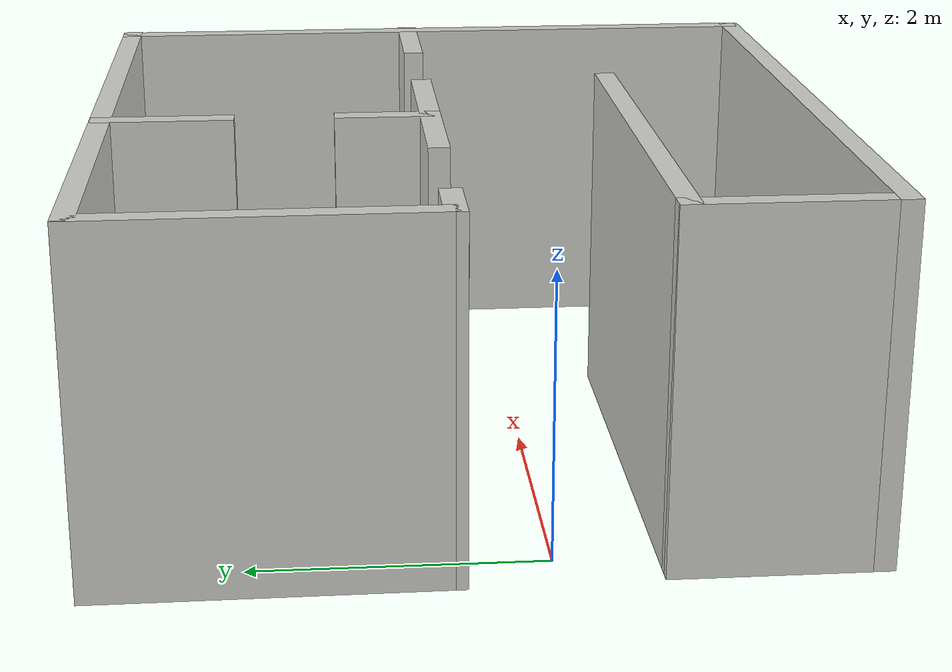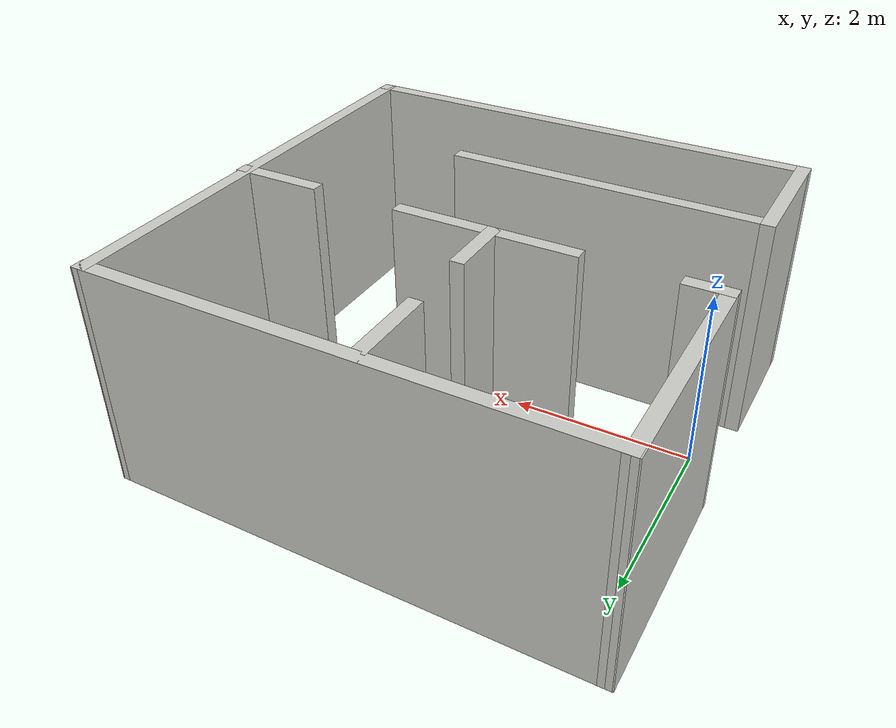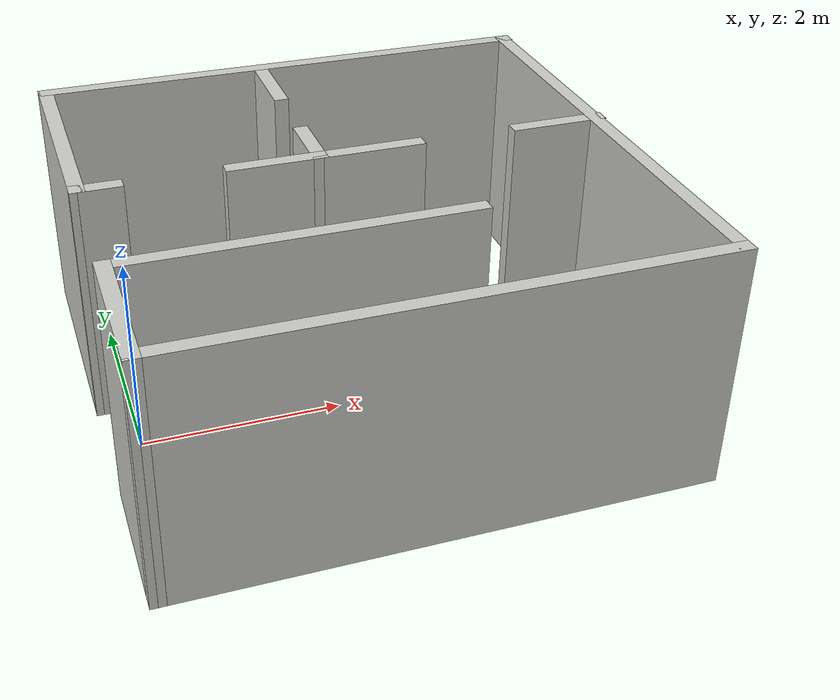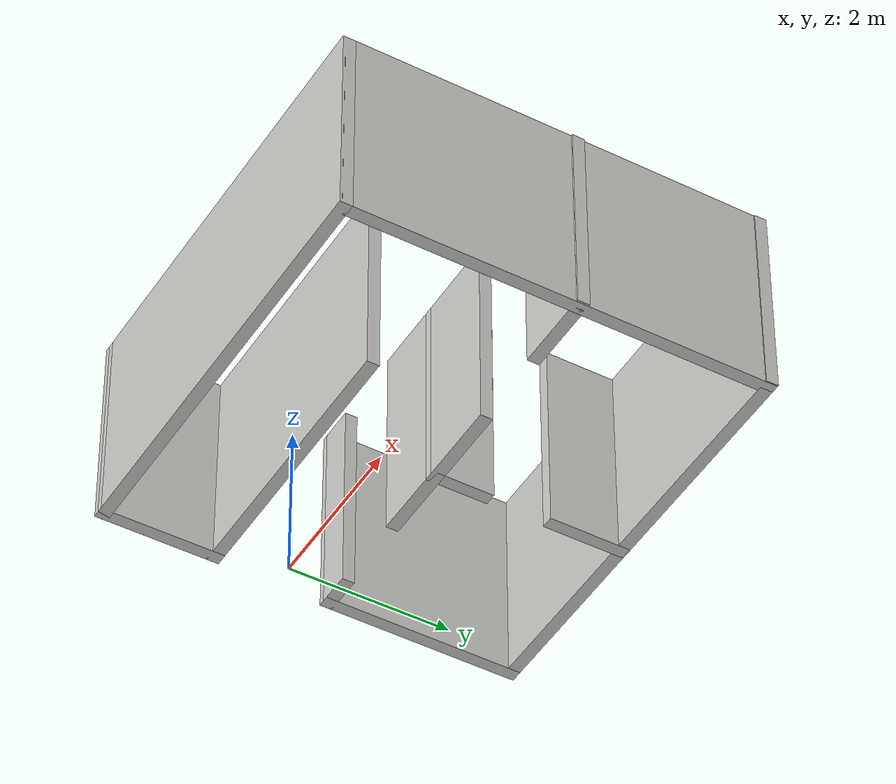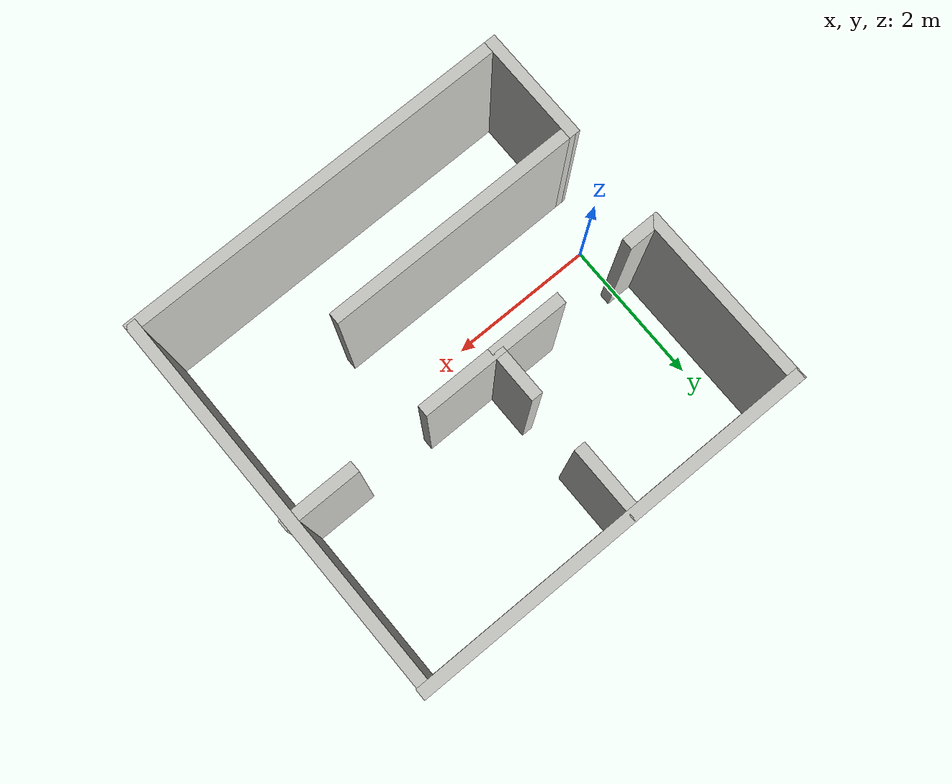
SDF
<?xml version='1.0'?>
<sdf version='1.7'>
  <model name='WH_new_final'>
    <pose>2.33032 0.4238 0 0 -0 0</pose>
    <link name='Wall_12'>
      <collision name='Wall_12_Collision'>
        <geometry>
          <box>
            <size>5.35582 0.15 2.5</size>
          </box>
        </geometry>
        <pose>0 0 1.25 0 -0 0</pose>
      </collision>
      <visual name='Wall_12_Visual'>
        <pose>0 0 1.25 0 -0 0</pose>
        <geometry>
          <box>
            <size>5.35582 0.15 2.5</size>
          </box>
        </geometry>
        <material>
          <script>
            <uri>file://media/materials/scripts/gazebo.material</uri>
            <name>Gazebo/CeilingTiled</name>
          </script>
          <ambient>0.921569 0.807843 0.615686 1</ambient>
        </material>
        <meta>
          <layer>0</layer>
        </meta>
      </visual>
      <pose>-0.000838 2.53222 0 0 -0 3.13905</pose>
    </link>
    <link name='Wall_13'>
      <collision name='Wall_13_Collision'>
        <geometry>
          <box>
            <size>2.46059 0.15 2.5</size>
          </box>
        </geometry>
        <pose>0 0 1.25 0 -0 0</pose>
      </collision>
      <visual name='Wall_13_Visual'>
        <pose>0 0 1.25 0 -0 0</pose>
        <geometry>
          <box>
            <size>2.46059 0.15 2.5</size>
          </box>
        </geometry>
        <material>
          <script>
            <uri>file://media/materials/scripts/gazebo.material</uri>
            <name>Gazebo/CeilingTiled</name>
          </script>
          <ambient>0.921569 0.807843 0.615686 1</ambient>
        </material>
        <meta>
          <layer>0</layer>
        </meta>
      </visual>
      <pose>-2.61031 1.38356 0 0 -0 -1.5651</pose>
    </link>
    <link name='Wall_14'>
      <collision name='Wall_14_Collision'>
        <geometry>
          <box>
            <size>0.5 0.15 2.5</size>
          </box>
        </geometry>
        <pose>0 0 1.25 0 -0 0</pose>
      </collision>
      <visual name='Wall_14_Visual'>
        <pose>0 0 1.25 0 -0 0</pose>
        <geometry>
          <box>
            <size>0.5 0.15 2.5</size>
          </box>
        </geometry>
        <material>
          <script>
            <uri>file://media/materials/scripts/gazebo.material</uri>
            <name>Gazebo/CeilingTiled</name>
          </script>
          <ambient>0.921569 0.807843 0.615686 1</ambient>
        </material>
        <meta>
          <layer>0</layer>
        </meta>
      </visual>
      <pose>-2.42874 0.228285 0 0 -0 0</pose>
    </link>
    <link name='Wall_16'>
      <collision name='Wall_16_Collision'>
        <geometry>
          <box>
            <size>1 0.15 2.5</size>
          </box>
        </geometry>
        <pose>0 0 1.25 0 -0 0</pose>
      </collision>
      <visual name='Wall_16_Visual'>
        <pose>0 0 1.25 0 -0 0</pose>
        <geometry>
          <box>
            <size>1 0.15 2.5</size>
          </box>
        </geometry>
        <material>
          <script>
            <uri>file://media/materials/scripts/gazebo.material</uri>
            <name>Gazebo/CeilingTiled</name>
          </script>
          <ambient>0.921569 0.807843 0.615686 1</ambient>
        </material>
        <meta>
          <layer>0</layer>
        </meta>
      </visual>
      <pose>-0.728738 0.228285 0 0 -0 0</pose>
    </link>
    <link name='Wall_17'>
      <collision name='Wall_17_Collision'>
        <geometry>
          <box>
            <size>0.750062 0.15 2.5</size>
          </box>
        </geometry>
        <pose>0 0 1.25 0 -0 0</pose>
      </collision>
      <visual name='Wall_17_Visual'>
        <pose>0 0 1.25 0 -0 0</pose>
        <geometry>
          <box>
            <size>0.750062 0.15 2.5</size>
          </box>
        </geometry>
        <material>
          <script>
            <uri>file://media/materials/scripts/gazebo.material</uri>
            <name>Gazebo/CeilingTiled</name>
          </script>
          <ambient>0.921569 0.807843 0.615686 1</ambient>
        </material>
        <meta>
          <layer>0</layer>
        </meta>
      </visual>
      <pose>-0.303738 0.528285 0 0 -0 1.5708</pose>
    </link>
    <link name='Wall_19'>
      <collision name='Wall_19_Collision'>
        <geometry>
          <box>
            <size>1.13716 0.15 2.5</size>
          </box>
        </geometry>
        <pose>0 0 1.25 0 -0 0</pose>
      </collision>
      <visual name='Wall_19_Visual'>
        <pose>0 0 1.25 0 -0 0</pose>
        <geometry>
          <box>
            <size>1.13716 0.15 2.5</size>
          </box>
        </geometry>
        <material>
          <script>
            <uri>file://media/materials/scripts/gazebo.material</uri>
            <name>Gazebo/CeilingTiled</name>
          </script>
          <ambient>0.921569 0.807843 0.615686 1</ambient>
        </material>
        <meta>
          <layer>0</layer>
        </meta>
      </visual>
      <pose>0.189841 0.227732 0 0 -0 -0.001119</pose>
    </link>
    <link name='Wall_21'>
      <collision name='Wall_21_Collision'>
        <geometry>
          <box>
            <size>1 0.15 2.5</size>
          </box>
        </geometry>
        <pose>0 0 1.25 0 -0 0</pose>
      </collision>
      <visual name='Wall_21_Visual'>
        <pose>0 0 1.25 0 -0 0</pose>
        <geometry>
          <box>
            <size>1 0.15 2.5</size>
          </box>
        </geometry>
        <material>
          <script>
            <uri>file://media/materials/scripts/gazebo.material</uri>
            <name>Gazebo/CeilingTiled</name>
          </script>
          <ambient>0.921569 0.807843 0.615686 1</ambient>
        </material>
        <meta>
          <layer>0</layer>
        </meta>
      </visual>
      <pose>2.19231 0.228285 0 0 -0 0</pose>
    </link>
    <link name='Wall_24'>
      <collision name='Wall_24_Collision'>
        <geometry>
          <box>
            <size>1 0.15 2.5</size>
          </box>
        </geometry>
        <pose>0 0 1.25 0 -0 0</pose>
      </collision>
      <visual name='Wall_24_Visual'>
        <pose>0 0 1.25 0 -0 0</pose>
        <geometry>
          <box>
            <size>1 0.15 2.5</size>
          </box>
        </geometry>
        <material>
          <script>
            <uri>file://media/materials/scripts/gazebo.material</uri>
            <name>Gazebo/CeilingTiled</name>
          </script>
          <ambient>0.921569 0.807843 0.615686 1</ambient>
        </material>
        <meta>
          <layer>0</layer>
        </meta>
      </visual>
      <pose>-0.303738 2.10329 0 0 -0 1.5708</pose>
    </link>
    <link name='Wall_5'>
      <collision name='Wall_5_Collision'>
        <geometry>
          <box>
            <size>1.5 0.15 2.5</size>
          </box>
        </geometry>
        <pose>0 0 1.25 0 -0 0</pose>
      </collision>
      <visual name='Wall_5_Visual'>
        <pose>0 0 1.25 0 -0 0</pose>
        <geometry>
          <box>
            <size>1.5 0.15 2.5</size>
          </box>
        </geometry>
        <material>
          <script>
            <uri>file://media/materials/scripts/gazebo.material</uri>
            <name>Gazebo/CeilingTiled</name>
          </script>
          <ambient>0.921569 0.807843 0.615686 1</ambient>
        </material>
        <meta>
          <layer>0</layer>
        </meta>
      </visual>
      <pose>-2.57201 -1.8642 0 0 -0 1.5708</pose>
    </link>
    <link name='Wall_6'>
      <collision name='Wall_6_Collision'>
        <geometry>
          <box>
            <size>3.5 0.15 2.5</size>
          </box>
        </geometry>
        <pose>0 0 1.25 0 -0 0</pose>
      </collision>
      <visual name='Wall_6_Visual'>
        <pose>0 0 1.25 0 -0 0</pose>
        <geometry>
          <box>
            <size>3.5 0.15 2.5</size>
          </box>
        </geometry>
        <material>
          <script>
            <uri>file://media/materials/scripts/gazebo.material</uri>
            <name>Gazebo/CeilingTiled</name>
          </script>
          <ambient>0.921569 0.807843 0.615686 1</ambient>
        </material>
        <meta>
          <layer>0</layer>
        </meta>
      </visual>
      <pose>-0.897008 -1.1892 0 0 -0 0</pose>
    </link>
    <link name='Wall_8'>
      <collision name='Wall_8_Collision'>
        <geometry>
          <box>
            <size>5.32439 0.15 2.5</size>
          </box>
        </geometry>
        <pose>0 0 1.25 0 -0 0</pose>
      </collision>
      <visual name='Wall_8_Visual'>
        <pose>0 0 1.25 0 -0 0</pose>
        <geometry>
          <box>
            <size>5.32439 0.15 2.5</size>
          </box>
        </geometry>
        <material>
          <script>
            <uri>file://media/materials/scripts/gazebo.material</uri>
            <name>Gazebo/CeilingTiled</name>
          </script>
          <ambient>0.921569 0.807843 0.615686 1</ambient>
        </material>
        <meta>
          <layer>0</layer>
        </meta>
      </visual>
      <pose>0.015027 -2.53707 0 0 -0 0.000823</pose>
    </link>
    <link name='Wall_9'>
      <collision name='Wall_9_Collision'>
        <geometry>
          <box>
            <size>5.18412 0.15 2.5</size>
          </box>
        </geometry>
        <pose>0 0 1.25 0 -0 0</pose>
      </collision>
      <visual name='Wall_9_Visual'>
        <pose>0 0 1.25 0 -0 0</pose>
        <geometry>
          <box>
            <size>5.18412 0.15 2.5</size>
          </box>
        </geometry>
        <material>
          <script>
            <uri>file://media/materials/scripts/gazebo.material</uri>
            <name>Gazebo/CeilingTiled</name>
          </script>
          <ambient>0.921569 0.807843 0.615686 1</ambient>
        </material>
        <meta>
          <layer>0</layer>
        </meta>
      </visual>
      <pose>2.59549 0.008559 0 0 -0 1.57341</pose>
    </link>
    <static>1</static>
  </model>
</sdf>
